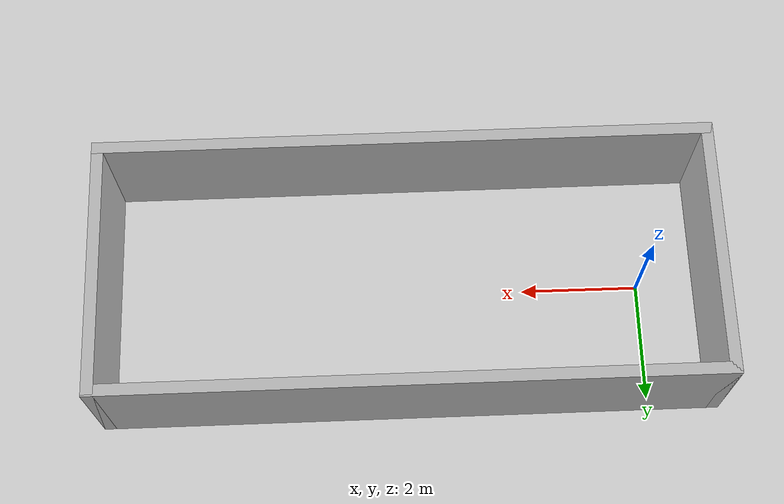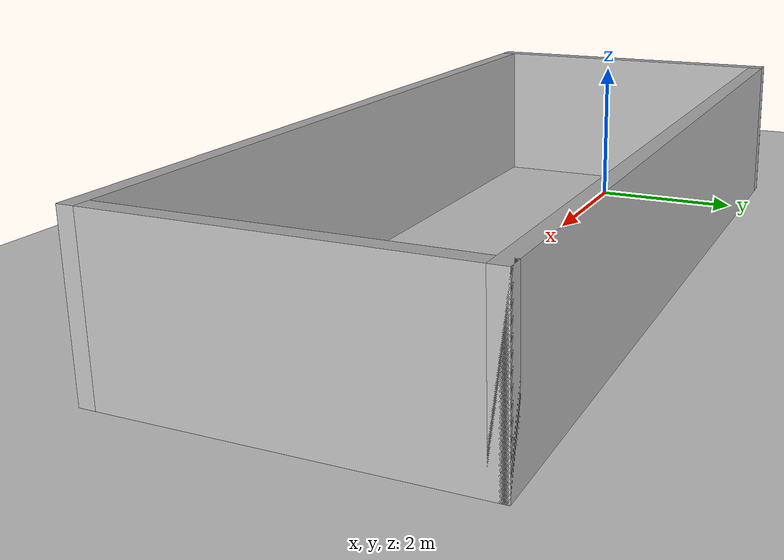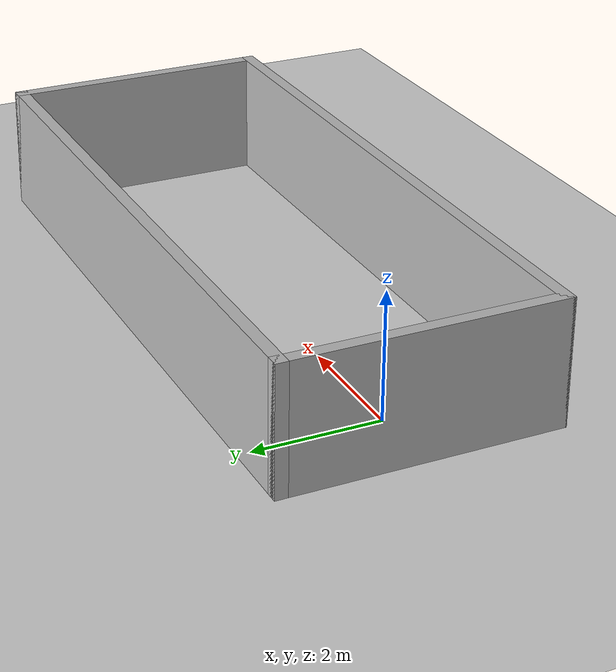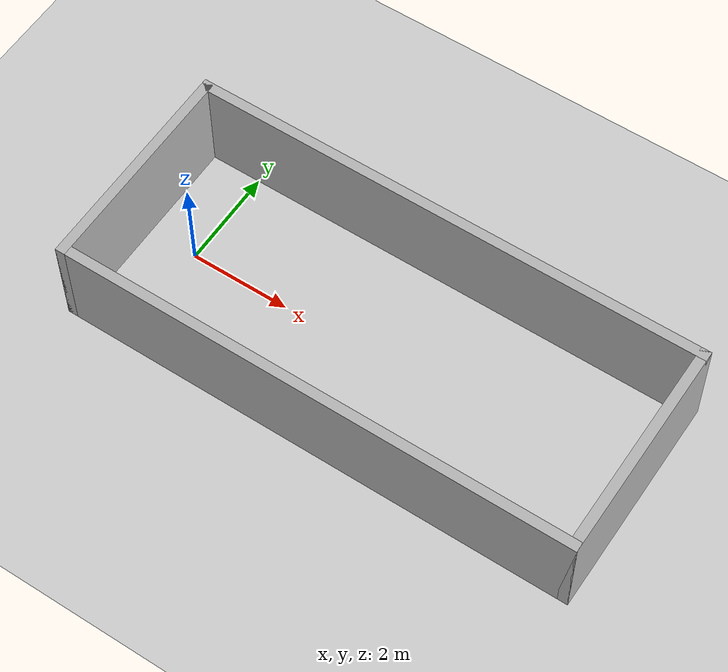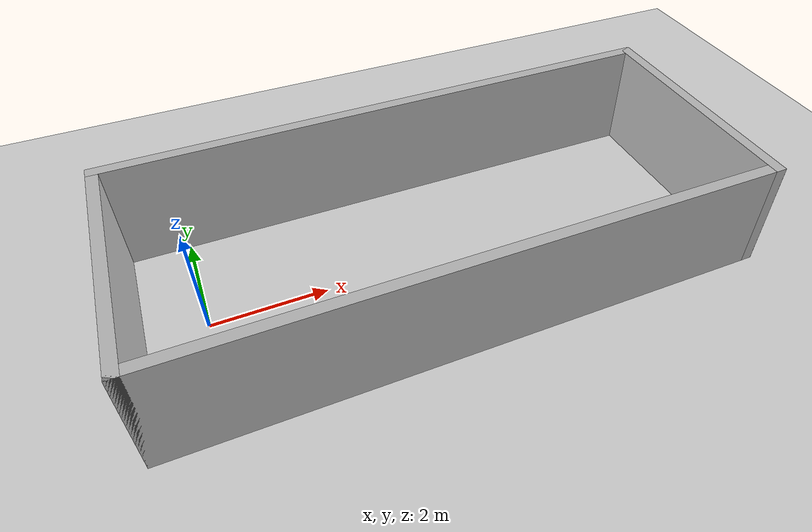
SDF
<sdf version="1.9">
 <world name="test_new_corridor_parallel1_reciprocal_v046">
  <physics name="1ms" type="ignored">
   <max_step_size>0.001</max_step_size>
   <real_time_factor>1</real_time_factor>
   <real_time_update_rate>1000</real_time_update_rate>
  </physics>
  <plugin name="ignition::gazebo::systems::Physics" filename="ignition-gazebo-physics-system"/>
  <plugin name="ignition::gazebo::systems::UserCommands" filename="ignition-gazebo-user-commands-system"/>
  <plugin name="ignition::gazebo::systems::SceneBroadcaster" filename="ignition-gazebo-scene-broadcaster-system"/>
  <plugin name="ignition::gazebo::systems::Contact" filename="ignition-gazebo-contact-system"/>
  <light name="sun" type="directional">
   <pose>0 0 10 0 0 0</pose>
   <intensity>1.1</intensity>
   <direction>-0.5 0.1 -0.9</direction>
   <diffuse>0.9 0.9 0.9 1</diffuse>
   <specular>0.2 0.2 0.2 1</specular>
  </light>
  <model name="ground_plane">
   <static>true</static>
   <link name="link">
    <collision name="collision">
     <geometry><plane><normal>0 0 1</normal><size>100 100</size></plane></geometry>
    </collision>
    <visual name="visual">
     <geometry><plane><normal>0 0 1</normal><size>100 100</size></plane></geometry>
     <material><ambient>0.82 0.82 0.82 1</ambient><diffuse>0.82 0.82 0.82 1</diffuse></material>
    </visual>
   </link>
  </model>
  <model name="corridor_border">
   <static>true</static>
   <link name="north">
    <pose>4.00 2.10 1 0 0 0</pose>
    <collision name="collision"><geometry><box><size>10.40 0.20 2</size></box></geometry></collision>
    <visual name="visual"><geometry><box><size>10.40 0.20 2</size></box></geometry></visual>
   </link>
   <link name="south">
    <pose>4.00 -2.10 1 0 0 0</pose>
    <collision name="collision"><geometry><box><size>10.40 0.20 2</size></box></geometry></collision>
    <visual name="visual"><geometry><box><size>10.40 0.20 2</size></box></geometry></visual>
   </link>
   <link name="west">
    <pose>-1.10 0 1 0 0 0</pose>
    <collision name="collision"><geometry><box><size>0.20 4.40 2</size></box></geometry></collision>
    <visual name="visual"><geometry><box><size>0.20 4.40 2</size></box></geometry></visual>
   </link>
   <link name="east">
    <pose>9.10 0 1 0 0 0</pose>
    <collision name="collision"><geometry><box><size>0.20 4.40 2</size></box></geometry></collision>
    <visual name="visual"><geometry><box><size>0.20 4.40 2</size></box></geometry></visual>
   </link>
  </model>
 </world>
</sdf>
